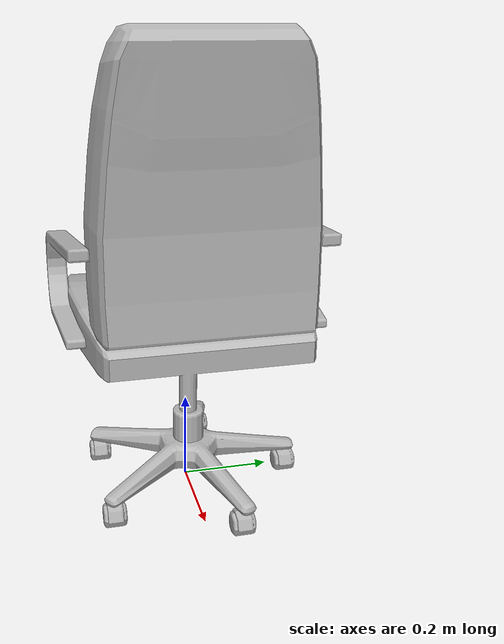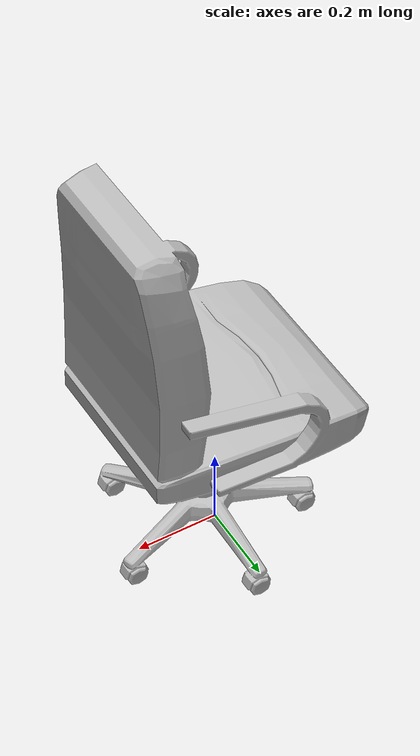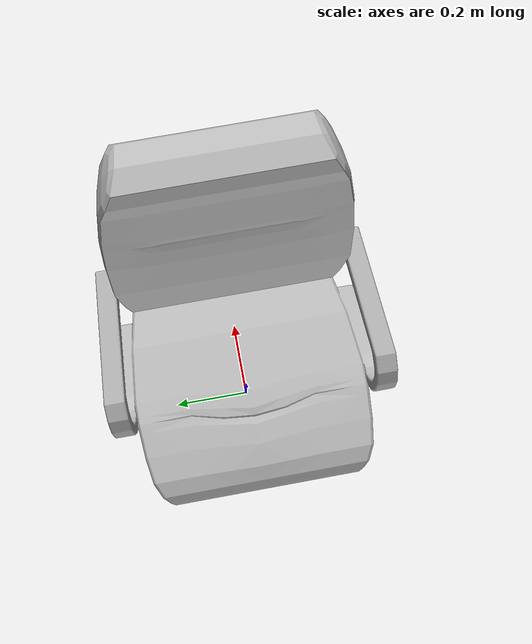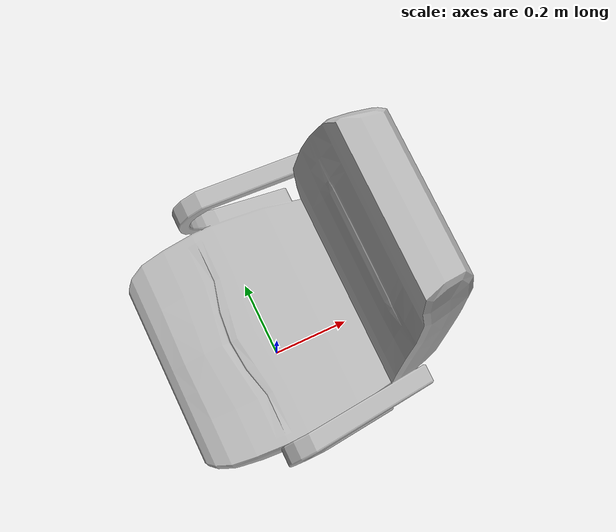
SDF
<?xml version='1.0'?>
<sdf version='1.4'>
  <model name='106'>
    <pose>0 0 0 0 0 0</pose>
    <static>true</static>
    <link name='link'>
      <collision name='collision'>
        <pose>0 0 0 0 0 0</pose>
        <geometry>
          <box>
            <size>0.550393 0.596196 2</size>
          </box>
        </geometry>
      </collision>
      <visual name='visual'>
        <pose>0 0 0 0 0 0</pose>
        <geometry>
          <mesh><uri>model://106/106.dae</uri></mesh>
        </geometry>
      </visual>
    </link>
  </model>
</sdf>
